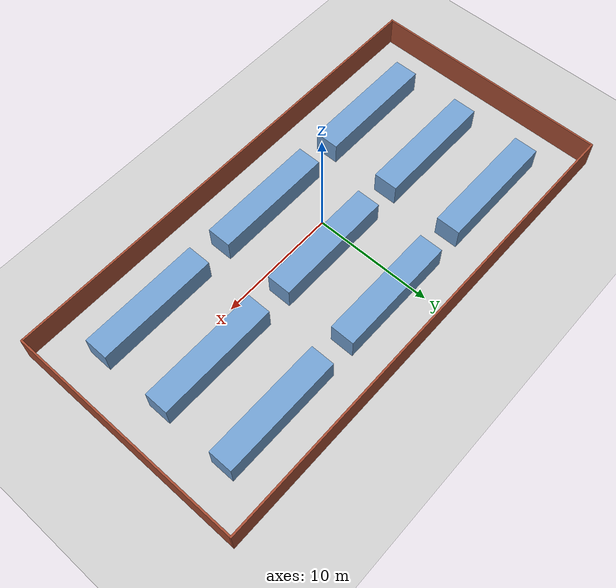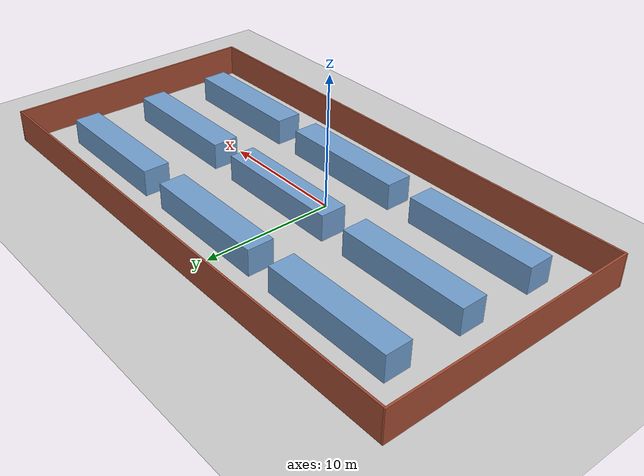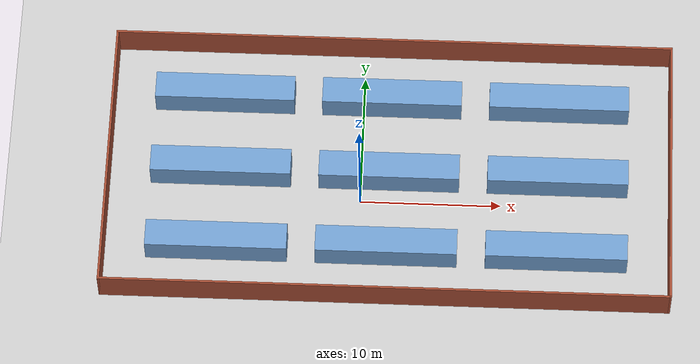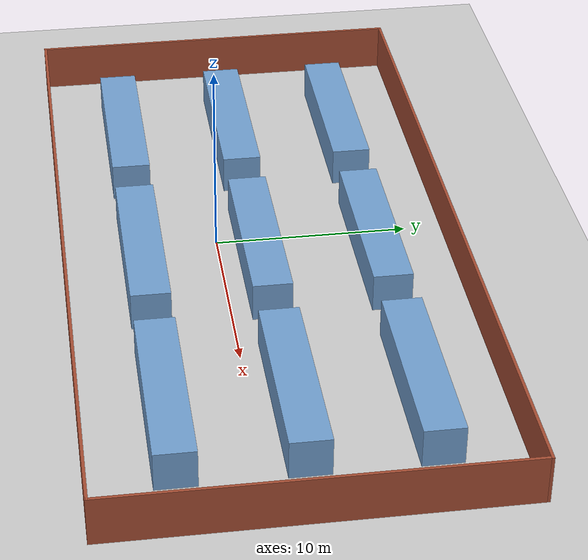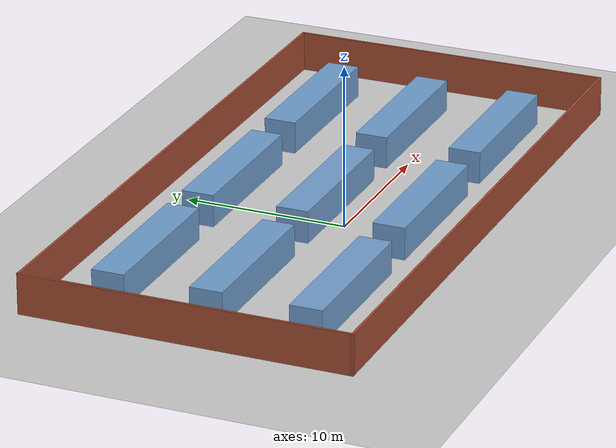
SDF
<sdf version="1.6">
 <world name="default">
  <light name="sun" type="directional">
   <pose>0 0 10 0 -0 0</pose>
   <diffuse>0.8 0.8 0.8 1</diffuse>
   <specular>0.2 0.2 0.2 1</specular>
   <attenuation>
    <range>1000</range>
    <constant>0.9</constant>
    <linear>0.01</linear>
    <quadratic>0.001</quadratic>
   </attenuation>
   <direction>-0.5 0.1 -0.9</direction>
   <spot><inner_angle>0</inner_angle><outer_angle>0</outer_angle><falloff>0</falloff></spot>
  </light>
  <model name="ground_plane">
   <static>1</static>
   <link name="link">
    <collision name="collision">
     <geometry><plane><normal>0 0 1</normal><size>100 100</size></plane></geometry>
     <surface><friction><ode><mu>100</mu><mu2>50</mu2></ode></friction></surface>
    </collision>
    <visual name="visual">
     <cast_shadows>0</cast_shadows>
     <geometry><plane><normal>0 0 1</normal><size>100 100</size></plane></geometry>
     <material>
      <script><uri>file://media/materials/scripts/gazebo.material</uri><name>Gazebo/Grey</name></script>
     </material>
    </visual>
   </link>
  </model>
  <gravity>0 0 -9.8</gravity>
  <magnetic_field>6e-06 2.3e-05 -4.2e-05</magnetic_field>
  <atmosphere type="adiabatic"/>
  <physics name="default_physics" default="0" type="ode">
   <max_step_size>0.001</max_step_size>
   <real_time_factor>1</real_time_factor>
   <real_time_update_rate>1000</real_time_update_rate>
  </physics>
  <scene><ambient>0.4 0.4 0.4 1</ambient><background>0.7 0.7 0.7 1</background><shadows>1</shadows></scene>
  <spherical_coordinates>
   <surface_model>EARTH_WGS84</surface_model>
   <latitude_deg>0</latitude_deg>
   <longitude_deg>0</longitude_deg>
   <elevation>0</elevation>
   <heading_deg>0</heading_deg>
  </spherical_coordinates>
  <model name="warehouse">
   <pose>2 2 0 0 -0 0</pose>
   <link name="Wall_11">
    <collision name="Wall_11_Collision">
     <geometry><box><size>40.15 0.15 2.5</size></box></geometry>
     <pose>0 0 1.25 0 -0 0</pose>
    </collision>
    <visual name="Wall_11_Visual">
     <pose>0 0 1.25 0 -0 0</pose>
     <geometry><box><size>40.15 0.15 2.5</size></box></geometry>
     <material>
      <script><uri>file://media/materials/scripts/gazebo.material</uri><name>Gazebo/Bricks</name></script>
      <ambient>1 1 1 1</ambient>
     </material>
     <meta><layer>0</layer></meta>
    </visual>
    <pose>0 10 0 0 -0 0</pose>
   </link>
   <link name="Wall_13">
    <collision name="Wall_13_Collision">
     <geometry><box><size>20.15 0.15 2.5</size></box></geometry>
     <pose>0 0 1.25 0 -0 0</pose>
    </collision>
    <visual name="Wall_13_Visual">
     <pose>0 0 1.25 0 -0 0</pose>
     <geometry><box><size>20.15 0.15 2.5</size></box></geometry>
     <material>
      <script><uri>file://media/materials/scripts/gazebo.material</uri><name>Gazebo/Bricks</name></script>
      <ambient>1 1 1 1</ambient>
     </material>
     <meta><layer>0</layer></meta>
    </visual>
    <pose>-20 0 0 0 -0 1.5708</pose>
   </link>
   <link name="Wall_15">
    <collision name="Wall_15_Collision">
     <geometry><box><size>20.15 0.15 2.5</size></box></geometry>
     <pose>0 0 1.25 0 -0 0</pose>
    </collision>
    <visual name="Wall_15_Visual">
     <pose>0 0 1.25 0 -0 0</pose>
     <geometry><box><size>20.15 0.15 2.5</size></box></geometry>
     <material>
      <script><uri>file://media/materials/scripts/gazebo.material</uri><name>Gazebo/Bricks</name></script>
      <ambient>1 1 1 1</ambient>
     </material>
     <meta><layer>0</layer></meta>
    </visual>
    <pose>20 0 0 0 -0 1.5708</pose>
   </link>
   <link name="Wall_9">
    <collision name="Wall_9_Collision">
     <geometry><box><size>40.15 0.15 2.5</size></box></geometry>
     <pose>0 0 1.25 0 -0 0</pose>
    </collision>
    <visual name="Wall_9_Visual">
     <pose>0 0 1.25 0 -0 0</pose>
     <geometry><box><size>40.15 0.15 2.5</size></box></geometry>
     <material>
      <script><uri>file://media/materials/scripts/gazebo.material</uri><name>Gazebo/Bricks</name></script>
      <ambient>1 1 1 1</ambient>
     </material>
     <meta><layer>0</layer></meta>
    </visual>
    <pose>0 -10 0 0 -0 0</pose>
   </link>
   <static>1</static>
  </model>
  <model name="shelves">
   <link name="link_clone_2">
    <inertial>
     <mass>50</mass>
     <inertia><ixx>33.3333</ixx><ixy>0</ixy><ixz>0</ixz><iyy>433.333</iyy><iyz>0</iyz><izz>433.333</izz></inertia>
    </inertial>
    <visual name="visual">
     <geometry><box><size>10 2 2</size></box></geometry>
     <material>
      <script><name>Gazebo/Grey</name><uri>file://media/materials/scripts/gazebo.material</uri></script>
      <shader type="pixel"><normal_map>__default__</normal_map></shader>
      <ambient>0.447 0.624 0.812 1</ambient>
      <diffuse>0.447 0.624 0.812 1</diffuse>
      <specular>0.447 0.624 0.812 1</specular>
      <emissive>0 0 0 1</emissive>
     </material>
    </visual>
    <collision name="collision">
     <geometry><box><size>10 2 2</size></box></geometry>
     <surface>
      <friction>
       <ode><mu>1</mu><mu2>1</mu2><fdir1>0 0 0</fdir1><slip1>0</slip1><slip2>0</slip2></ode>
       <torsional>
        <coefficient>1</coefficient>
        <patch_radius>0</patch_radius>
        <surface_radius>0</surface_radius>
        <use_patch_radius>1</use_patch_radius>
        <ode><slip>0</slip></ode>
       </torsional>
      </friction>
      <bounce><restitution_coefficient>0</restitution_coefficient><threshold>1e+06</threshold></bounce>
      <contact>
       <collide_without_contact>0</collide_without_contact>
       <collide_without_contact_bitmask>1</collide_without_contact_bitmask>
       <collide_bitmask>1</collide_bitmask>
       <ode>
        <soft_cfm>0</soft_cfm>
        <soft_erp>0.2</soft_erp>
        <kp>1e+13</kp>
        <kd>1</kd>
        <max_vel>0.01</max_vel>
        <min_depth>0</min_depth>
       </ode>
       <bullet>
        <split_impulse>1</split_impulse>
        <split_impulse_penetration_threshold>-0.01</split_impulse_penetration_threshold>
        <soft_cfm>0</soft_cfm>
        <soft_erp>0.2</soft_erp>
        <kp>1e+13</kp>
        <kd>1</kd>
       </bullet>
      </contact>
     </surface>
    </collision>
   </link>
   <link name="link_clone_2_clone">
    <inertial>
     <mass>50</mass>
     <inertia><ixx>33.3333</ixx><ixy>0</ixy><ixz>0</ixz><iyy>433.333</iyy><iyz>0</iyz><izz>433.333</izz></inertia>
    </inertial>
    <pose>-0 -6 0 0 -0 0</pose>
    <visual name="visual">
     <geometry><box><size>10 2 2</size></box></geometry>
     <material>
      <script><name>Gazebo/Grey</name><uri>file://media/materials/scripts/gazebo.material</uri></script>
      <shader type="pixel"><normal_map>__default__</normal_map></shader>
      <ambient>0.443 0.624 0.812 1</ambient>
      <diffuse>0.443 0.624 0.812 1</diffuse>
      <specular>0.443 0.624 0.812 1</specular>
      <emissive>0 0 0 1</emissive>
     </material>
    </visual>
    <collision name="collision">
     <geometry><box><size>10 2 2</size></box></geometry>
     <surface>
      <friction>
       <ode><mu>1</mu><mu2>1</mu2><fdir1>0 0 0</fdir1><slip1>0</slip1><slip2>0</slip2></ode>
       <torsional>
        <coefficient>1</coefficient>
        <patch_radius>0</patch_radius>
        <surface_radius>0</surface_radius>
        <use_patch_radius>1</use_patch_radius>
        <ode><slip>0</slip></ode>
       </torsional>
      </friction>
      <bounce><restitution_coefficient>0</restitution_coefficient><threshold>1e+06</threshold></bounce>
      <contact>
       <collide_without_contact>0</collide_without_contact>
       <collide_without_contact_bitmask>1</collide_without_contact_bitmask>
       <collide_bitmask>1</collide_bitmask>
       <ode>
        <soft_cfm>0</soft_cfm>
        <soft_erp>0.2</soft_erp>
        <kp>1e+13</kp>
        <kd>1</kd>
        <max_vel>0.01</max_vel>
        <min_depth>0</min_depth>
       </ode>
       <bullet>
        <split_impulse>1</split_impulse>
        <split_impulse_penetration_threshold>-0.01</split_impulse_penetration_threshold>
        <soft_cfm>0</soft_cfm>
        <soft_erp>0.2</soft_erp>
        <kp>1e+13</kp>
        <kd>1</kd>
       </bullet>
      </contact>
     </surface>
    </collision>
   </link>
   <link name="link_clone_2_clone_0">
    <inertial>
     <mass>50</mass>
     <inertia><ixx>33.3333</ixx><ixy>0</ixy><ixz>0</ixz><iyy>433.333</iyy><iyz>0</iyz><izz>433.333</izz></inertia>
    </inertial>
    <pose>0 6 -0 0 -0 0</pose>
    <visual name="visual">
     <geometry><box><size>10 2 2</size></box></geometry>
     <material>
      <script><name>Gazebo/Grey</name><uri>file://media/materials/scripts/gazebo.material</uri></script>
      <shader type="pixel"><normal_map>__default__</normal_map></shader>
      <ambient>0.443 0.624 0.812 1</ambient>
      <diffuse>0.443 0.624 0.812 1</diffuse>
      <specular>0.443 0.624 0.812 1</specular>
      <emissive>0 0 0 1</emissive>
     </material>
    </visual>
    <collision name="collision">
     <geometry><box><size>10 2 2</size></box></geometry>
     <surface>
      <friction>
       <ode><mu>1</mu><mu2>1</mu2><fdir1>0 0 0</fdir1><slip1>0</slip1><slip2>0</slip2></ode>
       <torsional>
        <coefficient>1</coefficient>
        <patch_radius>0</patch_radius>
        <surface_radius>0</surface_radius>
        <use_patch_radius>1</use_patch_radius>
        <ode><slip>0</slip></ode>
       </torsional>
      </friction>
      <bounce><restitution_coefficient>0</restitution_coefficient><threshold>1e+06</threshold></bounce>
      <contact>
       <collide_without_contact>0</collide_without_contact>
       <collide_without_contact_bitmask>1</collide_without_contact_bitmask>
       <collide_bitmask>1</collide_bitmask>
       <ode>
        <soft_cfm>0</soft_cfm>
        <soft_erp>0.2</soft_erp>
        <kp>1e+13</kp>
        <kd>1</kd>
        <max_vel>0.01</max_vel>
        <min_depth>0</min_depth>
       </ode>
       <bullet>
        <split_impulse>1</split_impulse>
        <split_impulse_penetration_threshold>-0.01</split_impulse_penetration_threshold>
        <soft_cfm>0</soft_cfm>
        <soft_erp>0.2</soft_erp>
        <kp>1e+13</kp>
        <kd>1</kd>
       </bullet>
      </contact>
     </surface>
    </collision>
   </link>
   <link name="link_clone_2_clone_1">
    <inertial>
     <mass>50</mass>
     <inertia><ixx>33.3333</ixx><ixy>0</ixy><ixz>0</ixz><iyy>433.333</iyy><iyz>0</iyz><izz>433.333</izz></inertia>
    </inertial>
    <pose>12 -6 -0 0 -0 0</pose>
    <visual name="visual">
     <geometry><box><size>10 2 2</size></box></geometry>
     <material>
      <script><name>Gazebo/Grey</name><uri>file://media/materials/scripts/gazebo.material</uri></script>
      <shader type="pixel"><normal_map>__default__</normal_map></shader>
      <ambient>0.443 0.624 0.812 1</ambient>
      <diffuse>0.443 0.624 0.812 1</diffuse>
      <specular>0.443 0.624 0.812 1</specular>
      <emissive>0.008 0.008 0.008 1</emissive>
     </material>
    </visual>
    <collision name="collision">
     <geometry><box><size>10 2 2</size></box></geometry>
     <surface>
      <friction>
       <ode><mu>1</mu><mu2>1</mu2><fdir1>0 0 0</fdir1><slip1>0</slip1><slip2>0</slip2></ode>
       <torsional>
        <coefficient>1</coefficient>
        <patch_radius>0</patch_radius>
        <surface_radius>0</surface_radius>
        <use_patch_radius>1</use_patch_radius>
        <ode><slip>0</slip></ode>
       </torsional>
      </friction>
      <bounce><restitution_coefficient>0</restitution_coefficient><threshold>1e+06</threshold></bounce>
      <contact>
       <collide_without_contact>0</collide_without_contact>
       <collide_without_contact_bitmask>1</collide_without_contact_bitmask>
       <collide_bitmask>1</collide_bitmask>
       <ode>
        <soft_cfm>0</soft_cfm>
        <soft_erp>0.2</soft_erp>
        <kp>1e+13</kp>
        <kd>1</kd>
        <max_vel>0.01</max_vel>
        <min_depth>0</min_depth>
       </ode>
       <bullet>
        <split_impulse>1</split_impulse>
        <split_impulse_penetration_threshold>-0.01</split_impulse_penetration_threshold>
        <soft_cfm>0</soft_cfm>
        <soft_erp>0.2</soft_erp>
        <kp>1e+13</kp>
        <kd>1</kd>
       </bullet>
      </contact>
     </surface>
    </collision>
   </link>
   <link name="link_clone_2_clone_2">
    <inertial>
     <mass>50</mass>
     <inertia><ixx>33.3333</ixx><ixy>0</ixy><ixz>0</ixz><iyy>433.333</iyy><iyz>0</iyz><izz>433.333</izz></inertia>
    </inertial>
    <pose>12 -0 -0 0 -0 0</pose>
    <visual name="visual">
     <geometry><box><size>10 2 2</size></box></geometry>
     <material>
      <script><name>Gazebo/Grey</name><uri>file://media/materials/scripts/gazebo.material</uri></script>
      <shader type="pixel"><normal_map>__default__</normal_map></shader>
      <ambient>0.443 0.624 0.812 1</ambient>
      <diffuse>0.443 0.624 0.812 1</diffuse>
      <specular>0.443 0.624 0.812 1</specular>
      <emissive>0.008 0.008 0.008 1</emissive>
     </material>
    </visual>
    <collision name="collision">
     <geometry><box><size>10 2 2</size></box></geometry>
     <surface>
      <friction>
       <ode><mu>1</mu><mu2>1</mu2><fdir1>0 0 0</fdir1><slip1>0</slip1><slip2>0</slip2></ode>
       <torsional>
        <coefficient>1</coefficient>
        <patch_radius>0</patch_radius>
        <surface_radius>0</surface_radius>
        <use_patch_radius>1</use_patch_radius>
        <ode><slip>0</slip></ode>
       </torsional>
      </friction>
      <bounce><restitution_coefficient>0</restitution_coefficient><threshold>1e+06</threshold></bounce>
      <contact>
       <collide_without_contact>0</collide_without_contact>
       <collide_without_contact_bitmask>1</collide_without_contact_bitmask>
       <collide_bitmask>1</collide_bitmask>
       <ode>
        <soft_cfm>0</soft_cfm>
        <soft_erp>0.2</soft_erp>
        <kp>1e+13</kp>
        <kd>1</kd>
        <max_vel>0.01</max_vel>
        <min_depth>0</min_depth>
       </ode>
       <bullet>
        <split_impulse>1</split_impulse>
        <split_impulse_penetration_threshold>-0.01</split_impulse_penetration_threshold>
        <soft_cfm>0</soft_cfm>
        <soft_erp>0.2</soft_erp>
        <kp>1e+13</kp>
        <kd>1</kd>
       </bullet>
      </contact>
     </surface>
    </collision>
   </link>
   <link name="link_clone_2_clone_3">
    <inertial>
     <mass>50</mass>
     <inertia><ixx>33.3333</ixx><ixy>0</ixy><ixz>0</ixz><iyy>433.333</iyy><iyz>0</iyz><izz>433.333</izz></inertia>
    </inertial>
    <pose>12 6 -0 0 -0 0</pose>
    <visual name="visual">
     <geometry><box><size>10 2 2</size></box></geometry>
     <material>
      <script><name>Gazebo/Grey</name><uri>file://media/materials/scripts/gazebo.material</uri></script>
      <shader type="pixel"><normal_map>__default__</normal_map></shader>
      <ambient>0.443 0.624 0.812 1</ambient>
      <diffuse>0.443 0.624 0.812 1</diffuse>
      <specular>0.443 0.624 0.812 1</specular>
      <emissive>0.008 0.008 0.008 1</emissive>
     </material>
    </visual>
    <collision name="collision">
     <geometry><box><size>10 2 2</size></box></geometry>
     <surface>
      <friction>
       <ode><mu>1</mu><mu2>1</mu2><fdir1>0 0 0</fdir1><slip1>0</slip1><slip2>0</slip2></ode>
       <torsional>
        <coefficient>1</coefficient>
        <patch_radius>0</patch_radius>
        <surface_radius>0</surface_radius>
        <use_patch_radius>1</use_patch_radius>
        <ode><slip>0</slip></ode>
       </torsional>
      </friction>
      <bounce><restitution_coefficient>0</restitution_coefficient><threshold>1e+06</threshold></bounce>
      <contact>
       <collide_without_contact>0</collide_without_contact>
       <collide_without_contact_bitmask>1</collide_without_contact_bitmask>
       <collide_bitmask>1</collide_bitmask>
       <ode>
        <soft_cfm>0</soft_cfm>
        <soft_erp>0.2</soft_erp>
        <kp>1e+13</kp>
        <kd>1</kd>
        <max_vel>0.01</max_vel>
        <min_depth>0</min_depth>
       </ode>
       <bullet>
        <split_impulse>1</split_impulse>
        <split_impulse_penetration_threshold>-0.01</split_impulse_penetration_threshold>
        <soft_cfm>0</soft_cfm>
        <soft_erp>0.2</soft_erp>
        <kp>1e+13</kp>
        <kd>1</kd>
       </bullet>
      </contact>
     </surface>
    </collision>
   </link>
   <link name="link_clone_2_clone_4">
    <inertial>
     <mass>50</mass>
     <inertia><ixx>33.3333</ixx><ixy>0</ixy><ixz>0</ixz><iyy>433.333</iyy><iyz>0</iyz><izz>433.333</izz></inertia>
    </inertial>
    <pose>-12 -6 0 0 -0 0</pose>
    <visual name="visual">
     <geometry><box><size>10 2 2</size></box></geometry>
     <material>
      <script><name>Gazebo/Grey</name><uri>file://media/materials/scripts/gazebo.material</uri></script>
      <shader type="pixel"><normal_map>__default__</normal_map></shader>
      <ambient>0.447 0.624 0.812 1</ambient>
      <diffuse>0.447 0.624 0.812 1</diffuse>
      <specular>0.447 0.624 0.812 1</specular>
      <emissive>0 0 0 1</emissive>
     </material>
    </visual>
    <collision name="collision">
     <geometry><box><size>10 2 2</size></box></geometry>
     <surface>
      <friction>
       <ode><mu>1</mu><mu2>1</mu2><fdir1>0 0 0</fdir1><slip1>0</slip1><slip2>0</slip2></ode>
       <torsional>
        <coefficient>1</coefficient>
        <patch_radius>0</patch_radius>
        <surface_radius>0</surface_radius>
        <use_patch_radius>1</use_patch_radius>
        <ode><slip>0</slip></ode>
       </torsional>
      </friction>
      <bounce><restitution_coefficient>0</restitution_coefficient><threshold>1e+06</threshold></bounce>
      <contact>
       <collide_without_contact>0</collide_without_contact>
       <collide_without_contact_bitmask>1</collide_without_contact_bitmask>
       <collide_bitmask>1</collide_bitmask>
       <ode>
        <soft_cfm>0</soft_cfm>
        <soft_erp>0.2</soft_erp>
        <kp>1e+13</kp>
        <kd>1</kd>
        <max_vel>0.01</max_vel>
        <min_depth>0</min_depth>
       </ode>
       <bullet>
        <split_impulse>1</split_impulse>
        <split_impulse_penetration_threshold>-0.01</split_impulse_penetration_threshold>
        <soft_cfm>0</soft_cfm>
        <soft_erp>0.2</soft_erp>
        <kp>1e+13</kp>
        <kd>1</kd>
       </bullet>
      </contact>
     </surface>
    </collision>
   </link>
   <link name="link_clone_2_clone_5">
    <inertial>
     <mass>50</mass>
     <inertia><ixx>33.3333</ixx><ixy>0</ixy><ixz>0</ixz><iyy>433.333</iyy><iyz>0</iyz><izz>433.333</izz></inertia>
    </inertial>
    <pose>-12 0 0 0 -0 0</pose>
    <visual name="visual">
     <geometry><box><size>10 2 2</size></box></geometry>
     <material>
      <script><name>Gazebo/Grey</name><uri>file://media/materials/scripts/gazebo.material</uri></script>
      <shader type="pixel"><normal_map>__default__</normal_map></shader>
      <ambient>0.443 0.624 0.812 1</ambient>
      <diffuse>0.443 0.624 0.812 1</diffuse>
      <specular>0.443 0.624 0.812 1</specular>
      <emissive>0 0 0 1</emissive>
     </material>
    </visual>
    <collision name="collision">
     <geometry><box><size>10 2 2</size></box></geometry>
     <surface>
      <friction>
       <ode><mu>1</mu><mu2>1</mu2><fdir1>0 0 0</fdir1><slip1>0</slip1><slip2>0</slip2></ode>
       <torsional>
        <coefficient>1</coefficient>
        <patch_radius>0</patch_radius>
        <surface_radius>0</surface_radius>
        <use_patch_radius>1</use_patch_radius>
        <ode><slip>0</slip></ode>
       </torsional>
      </friction>
      <bounce><restitution_coefficient>0</restitution_coefficient><threshold>1e+06</threshold></bounce>
      <contact>
       <collide_without_contact>0</collide_without_contact>
       <collide_without_contact_bitmask>1</collide_without_contact_bitmask>
       <collide_bitmask>1</collide_bitmask>
       <ode>
        <soft_cfm>0</soft_cfm>
        <soft_erp>0.2</soft_erp>
        <kp>1e+13</kp>
        <kd>1</kd>
        <max_vel>0.01</max_vel>
        <min_depth>0</min_depth>
       </ode>
       <bullet>
        <split_impulse>1</split_impulse>
        <split_impulse_penetration_threshold>-0.01</split_impulse_penetration_threshold>
        <soft_cfm>0</soft_cfm>
        <soft_erp>0.2</soft_erp>
        <kp>1e+13</kp>
        <kd>1</kd>
       </bullet>
      </contact>
     </surface>
    </collision>
   </link>
   <link name="link_clone_2_clone_6">
    <inertial>
     <mass>50</mass>
     <inertia><ixx>33.3333</ixx><ixy>0</ixy><ixz>0</ixz><iyy>433.333</iyy><iyz>0</iyz><izz>433.333</izz></inertia>
    </inertial>
    <pose>-12 6 0 0 -0 0</pose>
    <visual name="visual">
     <geometry><box><size>10 2 2</size></box></geometry>
     <material>
      <script><name>Gazebo/Grey</name><uri>file://media/materials/scripts/gazebo.material</uri></script>
      <shader type="pixel"><normal_map>__default__</normal_map></shader>
      <ambient>0.443 0.624 0.812 1</ambient>
      <diffuse>0.443 0.624 0.812 1</diffuse>
      <specular>0.443 0.624 0.812 1</specular>
      <emissive>0.008 0.008 0.008 1</emissive>
     </material>
    </visual>
    <collision name="collision">
     <geometry><box><size>10 2 2</size></box></geometry>
     <surface>
      <friction>
       <ode><mu>1</mu><mu2>1</mu2><fdir1>0 0 0</fdir1><slip1>0</slip1><slip2>0</slip2></ode>
       <torsional>
        <coefficient>1</coefficient>
        <patch_radius>0</patch_radius>
        <surface_radius>0</surface_radius>
        <use_patch_radius>1</use_patch_radius>
        <ode><slip>0</slip></ode>
       </torsional>
      </friction>
      <bounce><restitution_coefficient>0</restitution_coefficient><threshold>1e+06</threshold></bounce>
      <contact>
       <collide_without_contact>0</collide_without_contact>
       <collide_without_contact_bitmask>1</collide_without_contact_bitmask>
       <collide_bitmask>1</collide_bitmask>
       <ode>
        <soft_cfm>0</soft_cfm>
        <soft_erp>0.2</soft_erp>
        <kp>1e+13</kp>
        <kd>1</kd>
        <max_vel>0.01</max_vel>
        <min_depth>0</min_depth>
       </ode>
       <bullet>
        <split_impulse>1</split_impulse>
        <split_impulse_penetration_threshold>-0.01</split_impulse_penetration_threshold>
        <soft_cfm>0</soft_cfm>
        <soft_erp>0.2</soft_erp>
        <kp>1e+13</kp>
        <kd>1</kd>
       </bullet>
      </contact>
     </surface>
    </collision>
   </link>
   <static>0</static>
   <pose>2 2 1 0 -0 0</pose>
  </model>
  <audio><device>default</device></audio>
 </world>
</sdf>
